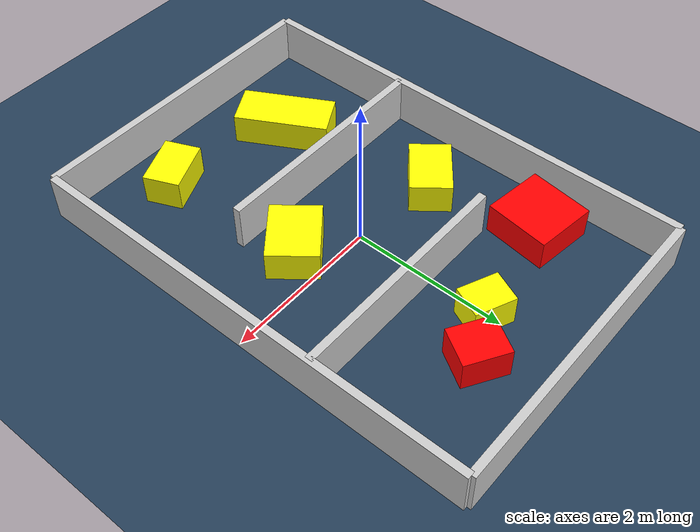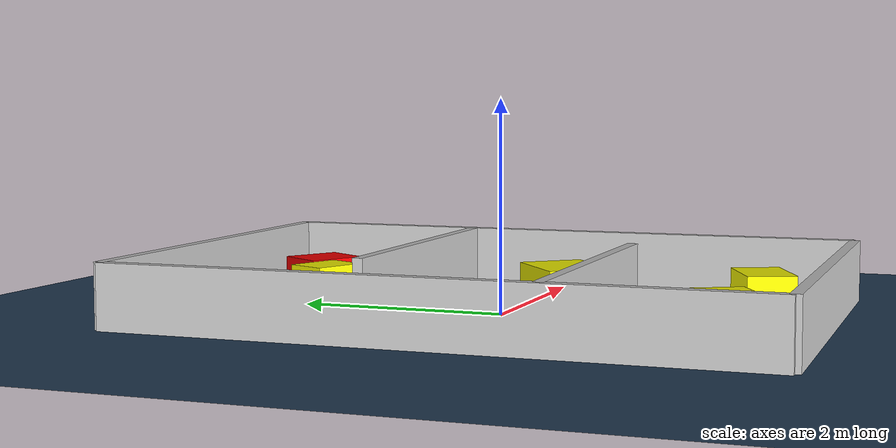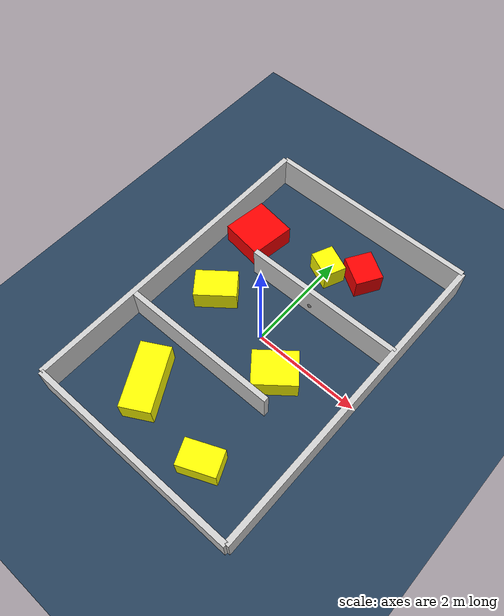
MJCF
<?xml version="1.0" ?>
<mujoco model="generated_environment">
  <option timestep="0.01" integrator="RK4" cone="elliptic"/>
  <default>
    <geom density="1"/>
  </default>
  <asset>
    <texture builtin="gradient" height="3072" rgb1="0.3 0.5 0.7" rgb2="0 0 0" type="skybox" width="512"/>
    <texture builtin="checker" height="300" mark="edge" markrgb="0.8 0.8 0.8" name="groundplane" rgb1="0.2 0.3 0.4" rgb2="0.1 0.2 0.3" type="2d" width="300"/>
    <material name="groundplane" reflectance="0.2" texrepeat="5 5" texture="groundplane" texuniform="true"/>
    <material name="robot" rgba="0.0 1.0 0.0 1"/>
  </asset>
  <worldbody>
    <light dir="0 0 -1" directional="true" pos="0 0 1.5"/>
    <geom condim="4" friction="1.0 0.005 0.001" material="groundplane" name="floor" size="0 0 0.05" type="plane"/>
    <body name="walls">
      <geom name="wall_1" condim="4" pos="-2.0 0.0 0.3" rgba="0.800000011920929 0.800000011920929 0.800000011920929 1.0" size="0.05 3.0 0.3" type="box"/>
      <geom name="wall_2" condim="4" pos="2.0 0.0 0.3" rgba="0.800000011920929 0.800000011920929 0.800000011920929 1.0" size="0.05 3.0 0.3" type="box"/>
      <geom name="wall_3" condim="4" pos="0.0 -3.0 0.3" rgba="0.800000011920929 0.800000011920929 0.800000011920929 1.0" size="2.0 0.05 0.3" type="box"/>
      <geom name="wall_4" condim="4" pos="0.0 3.0 0.3" rgba="0.800000011920929 0.800000011920929 0.800000011920929 1.0" size="2.0 0.05 0.3" type="box"/>
      <geom name="wall_5" condim="4" pos="-0.5 -1.0 0.3" rgba="0.800000011920929 0.800000011920929 0.800000011920929 1.0" size="1.5 0.05 0.3" type="box"/>
      <geom name="wall_6" condim="4" pos="0.5 1.0 0.3" rgba="0.800000011920929 0.800000011920929 0.800000011920929 1.0" size="1.5 0.05 0.3" type="box"/>
    </body>
    <body name="robot">
      <joint name="joint_x" type="slide" pos="0 0 0" axis="1 0 0"/>
      <joint name="joint_y" type="slide" pos="0 0 0" axis="0 1 0"/>
      <geom name="robot" type="sphere" pos="0.292875097623567 0.9752465098874845 0.2" size="0.05" mass="5." friction="1.0 0.005 0.0001" condim="4"/>
      <site name="sensor_ball"/>
    </body>
    <body name="obstacle_1_movable">
      <geom name="obstacle_1_movable" condim="4" pos="-1.1612332206377414 0.13375343476383117 0.2" euler="0 0 38.61631232606703" friction="1.0 0.005 0.001" rgba="1 1 0 1" size="0.3808289703170675 0.26113362165080506 0.2" type="box" mass="0.1"/>
      <joint type="free"/>
    </body>
    <body name="obstacle_2_movable">
      <geom name="obstacle_2_movable" condim="4" pos="-0.7871263959517093 -1.9139453651875216 0.2" euler="0 0 298.89351644714463" friction="1.0 0.005 0.001" rgba="1 1 0 1" size="0.5992525690172974 0.27291635376956597 0.2" type="box" mass="0.1"/>
      <joint type="free"/>
    </body>
    <body name="obstacle_3_movable">
      <geom name="obstacle_3_movable" condim="4" pos="0.026000761575961207 1.8003955938377185 0.2" euler="0 0 246.37114864124072" friction="1.0 0.005 0.001" rgba="1 1 0 1" size="0.20673946295114698 0.263460302775409 0.2" type="box" mass="0.1"/>
      <joint type="free"/>
    </body>
    <body name="obstacle_4_movable">
      <geom name="obstacle_4_movable" condim="4" pos="0.8106428519643758 -2.2995650559624923 0.2" euler="0 0 203.34267847077217" friction="1.0 0.005 0.001" rgba="1 1 0 1" size="0.3390088252827821 0.23264881280592992 0.2" type="box" mass="0.1"/>
      <joint type="free"/>
    </body>
    <body name="obstacle_5_static">
      <geom name="obstacle_5_static" condim="4" pos="-1.402766246350985 1.533108775291308 0.2" euler="0 0 262.20863238065033" friction="1.0 0.005 0.001" rgba="1 0 0 1" size="0.4158205725327473 0.39827029733121255 0.2" type="box"/>
    </body>
    <body name="obstacle_6_movable">
      <geom name="obstacle_6_movable" condim="4" pos="0.6784182065805855 -0.41878546374003234 0.2" euler="0 0 309.1512264937432" friction="1.0 0.005 0.001" rgba="1 1 0 1" size="0.31621820357086494 0.3942232155959563 0.2" type="box" mass="0.1"/>
      <joint type="free"/>
    </body>
    <body name="obstacle_7_static">
      <geom name="obstacle_7_static" condim="4" pos="0.5854702957940798 2.095732880620278 0.2" euler="0 0 238.6908479506676" friction="1.0 0.005 0.001" rgba="1 0 0 1" size="0.25216759879256745 0.28761655681846715 0.2" type="box"/>
    </body>
  </worldbody>
  <actuator>
    <motor name="actuator_x" joint="joint_x" gear="1" ctrlrange="-1 1"/>
    <motor name="actuator_y" joint="joint_y" gear="1" ctrlrange="-1 1"/>
  </actuator>
</mujoco>
